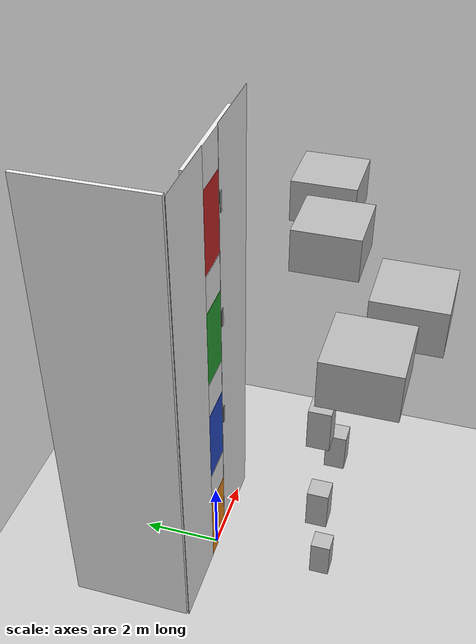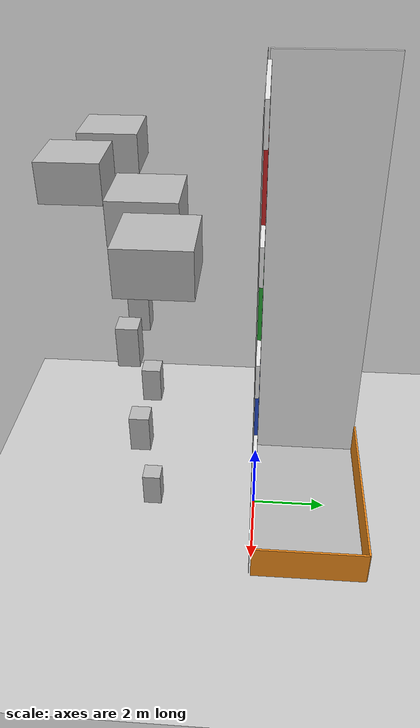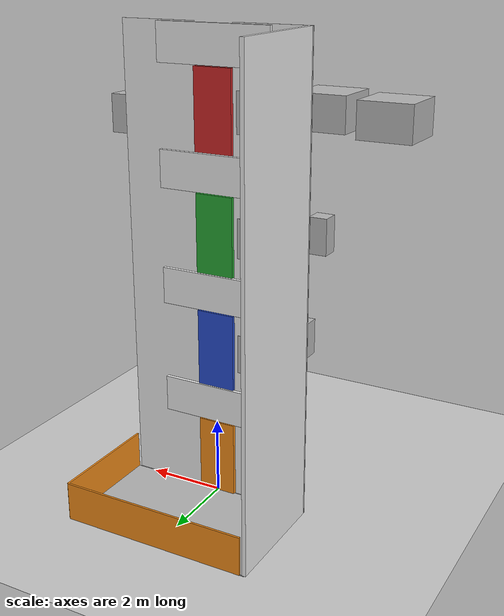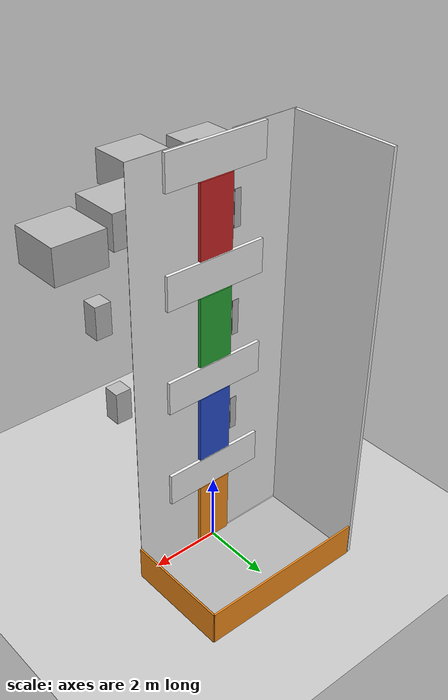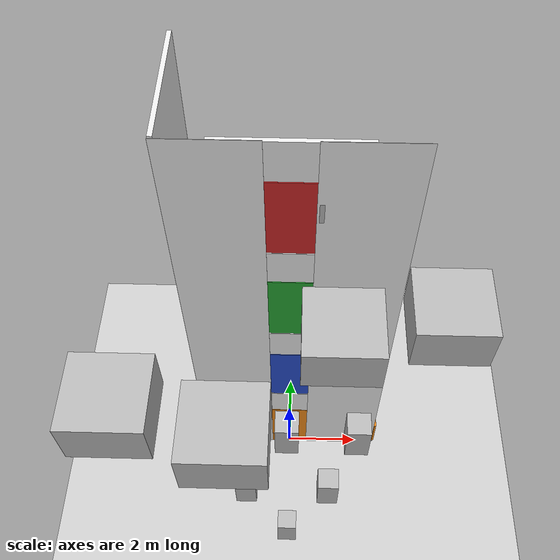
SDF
<sdf version="1.6">
 <world name="default">
  <include><uri>model://ground_plane</uri></include>
  <include><uri>model://sun</uri></include>
  <include>
   <uri>file:///home/sithija/mobile_receptionist_ws/src/gazebo_plugins/model/objects</uri>
   <pose>0 -2.90 0 0 0 0</pose>
  </include>
  <model name="sliding_boxes">
   <link name="level01_support">
    <pose>0 0 2.5 0 0 0</pose>
    <visual name="support01_visual">
     <geometry><box><size>3 0.1 0.95</size></box></geometry>
     <material>
      <script><uri>file://media/materials/scripts/gazebo.material</uri><name>Gazebo/White</name></script>
     </material>
    </visual>
    <collision name="support01_collision"><geometry><box><size>3 0.1 0.95</size></box></geometry></collision>
   </link>
   <link name="level02_support">
    <pose>0 0 5.5 0 0 0</pose>
    <visual name="support02_visual">
     <geometry><box><size>3 0.1 0.95</size></box></geometry>
     <material>
      <script><uri>file://media/materials/scripts/gazebo.material</uri><name>Gazebo/White</name></script>
     </material>
    </visual>
    <collision name="support02_collision"><geometry><box><size>3 0.1 0.95</size></box></geometry></collision>
   </link>
   <link name="level03_support">
    <pose>0 0 8.5 0 0 0</pose>
    <visual name="support03_visual">
     <geometry><box><size>3 0.1 0.95</size></box></geometry>
     <material>
      <script><uri>file://media/materials/scripts/gazebo.material</uri><name>Gazebo/White</name></script>
     </material>
    </visual>
    <collision name="support03_collision"><geometry><box><size>3 0.1 0.95</size></box></geometry></collision>
   </link>
   <link name="level04_support">
    <pose>0 0 11.5 0 0 0</pose>
    <visual name="support04_visual">
     <geometry><box><size>3 0.1 0.95</size></box></geometry>
     <material>
      <script><uri>file://media/materials/scripts/gazebo.material</uri><name>Gazebo/White</name></script>
     </material>
    </visual>
    <collision name="support04_collision"><geometry><box><size>3 0.1 0.95</size></box></geometry></collision>
   </link>
   <link name="front_wall_right">
    <pose>1.5 -0.05 6 0 0 0</pose>
    <visual name="front_wall_right_visual">
     <geometry><box><size>2 0.01 12</size></box></geometry>
     <material>
      <script><uri>file://media/materials/scripts/gazebo.material</uri><name>Gazebo/White</name></script>
     </material>
    </visual>
    <collision name="front_wall_right_collision">
     <geometry><box><size>2 0.01 12</size></box></geometry>
    </collision>
   </link>
   <link name="front_wall_left">
    <pose>-1.5 -0.05 6 0 0 0</pose>
    <visual name="front_wall_left_visual">
     <geometry><box><size>2 0.01 12</size></box></geometry>
     <material>
      <script><uri>file://media/materials/scripts/gazebo.material</uri><name>Gazebo/White</name></script>
     </material>
    </visual>
    <collision name="front_wall_left_collision"><geometry><box><size>2 0.01 12</size></box></geometry></collision>
   </link>
   <link name="elevator_support_left">
    <gravity>false</gravity>
    <pose>-2.45 1.5 6 0 0 0</pose>
    <visual name="elevator_support_left_visual">
     <geometry><box><size>0.1 3 12</size></box></geometry>
     <material>
      <script><uri>file://media/materials/scripts/gazebo.material</uri><name>Gazebo/White</name></script>
     </material>
    </visual>
    <collision name="elevator_support_left_collision">
     <geometry><box><size>0.1 3 12</size></box></geometry>
    </collision>
   </link>
   <link name="base"/>
   <link name="elevator">
    <gravity>false</gravity>
    <visual name="elevator_visual"><geometry><box><size>5 3 0.03</size></box></geometry></visual>
    <collision name="elevator_collision">
     <geometry><box><size>4.90 2.95 0.029</size></box></geometry>
     <surface><friction><ode><mu>1000.0</mu><mu2>1000.0</mu2></ode></friction></surface>
    </collision>
    <pose>0.05 1.5 0 0 0 0</pose>
   </link>
   <link name="elevator_handle_right">
    <gravity>false</gravity>
    <visual name="elevator_handle_right_visual">
     <geometry><box><size>0.05 3 1.0</size></box></geometry>
     <material>
      <script><uri>file://media/materials/scripts/gazebo.material</uri><name>Gazebo/Orange</name></script>
     </material>
    </visual>
    <collision name="elevator_handle_right_collision">
     <geometry><box><size>0.05 3 1.0</size></box></geometry>
    </collision>
    <pose>2.55 1.5 0.5 0 0 0</pose>
   </link>
   <link name="elevator_handle_rear">
    <gravity>false</gravity>
    <visual name="elevator_handle_rear_visual">
     <geometry><box><size>4.9 0.05 1.0</size></box></geometry>
     <material>
      <script><uri>file://media/materials/scripts/gazebo.material</uri><name>Gazebo/Orange</name></script>
     </material>
    </visual>
    <collision name="elevator_handle_rear_collision">
     <geometry><box><size>0.05 3 1.0</size></box></geometry>
    </collision>
    <pose>0.1 3.0 0.5 0 0 0</pose>
   </link>
   <link name="box1">
    <visual name="box1_visual">
     <geometry><box><size>1 0.1 2</size></box></geometry>
     <material>
      <script><uri>file://media/materials/scripts/gazebo.material</uri><name>Gazebo/Orange</name></script>
     </material>
    </visual>
    <collision name="box1_collision"><geometry><box><size>1 0.1 2</size></box></geometry></collision>
    <pose>0 0 1 0 0 0</pose>
   </link>
   <link name="box2">
    <visual name="box2_visual">
     <geometry><box><size>1 0.1 2</size></box></geometry>
     <material>
      <script><uri>file://media/materials/scripts/gazebo.material</uri><name>Gazebo/Blue</name></script>
     </material>
    </visual>
    <collision name="box2_collision"><geometry><box><size>1 0.1 2</size></box></geometry></collision>
    <pose>0 0 4 0 0 0</pose>
   </link>
   <link name="box3">
    <visual name="box3_visual">
     <geometry><box><size>1 0.1 2</size></box></geometry>
     <material>
      <script><uri>file://media/materials/scripts/gazebo.material</uri><name>Gazebo/Green</name></script>
     </material>
    </visual>
    <collision name="box3_collision"><geometry><box><size>1 0.1 2</size></box></geometry></collision>
    <pose>0 0 7 0 0 0</pose>
   </link>
   <link name="box4">
    <visual name="box4_visual">
     <geometry><box><size>1 0.1 2</size></box></geometry>
     <material>
      <script><uri>file://media/materials/scripts/gazebo.material</uri><name>Gazebo/Red</name></script>
     </material>
    </visual>
    <collision name="box4_collision"><geometry><box><size>1 0.1 2</size></box></geometry></collision>
    <pose>0 0 10 0 0 0</pose>
   </link>
   <link name="floor01_pannel_out">
    <visual name="floor01_pannel_out_visual">
     <geometry><box><size>0.1 0.01 0.5</size></box></geometry>
     <material>
      <script><uri>file://media/materials/scripts/pannel01.material</uri><name>Pannel01</name></script>
     </material>
    </visual>
    <pose>0.60 -0.06 4.2 0 0 0</pose>
   </link>
   <joint name="floor01_pannel_out_joint" type="fixed">
    <parent>base</parent>
    <child>floor01_pannel_out</child>
   </joint>
   <link name="floor02_pannel_out">
    <visual name="floor02_pannel_out_visual">
     <geometry><box><size>0.1 0.01 0.5</size></box></geometry>
     <material>
      <script><uri>file://media/materials/scripts/pannel02.material</uri><name>Pannel02</name></script>
     </material>
    </visual>
    <pose>0.60 -0.06 7.2 0 0 0</pose>
   </link>
   <joint name="floor02_pannel_out_joint" type="fixed">
    <parent>base</parent>
    <child>floor02_pannel_out</child>
   </joint>
   <link name="floor03_pannel_out">
    <visual name="floor03_pannel_out_visual">
     <geometry><box><size>0.1 0.01 0.5</size></box></geometry>
     <material>
      <script><uri>file://media/materials/scripts/pannel03.material</uri><name>Pannel03</name></script>
     </material>
    </visual>
    <pose>0.60 -0.06 10.2 0 0 0</pose>
   </link>
   <joint name="floor03_pannel_out_joint" type="fixed">
    <parent>base</parent>
    <child>floor03_pannel_out</child>
   </joint>
   <link name="floor01_pannel_in">
    <visual name="floor01_pannel_in_visual">
     <geometry><box><size>0.2 0.01 1.0</size></box></geometry>
     <material>
      <script><uri>file://media/materials/scripts/pannelIn01.material</uri><name>PannelIn01</name></script>
     </material>
    </visual>
    <pose>-0.70 -0.03 4 0 0 0</pose>
   </link>
   <joint name="floor01_pannel_in_joint" type="fixed">
    <parent>base</parent>
    <child>floor01_pannel_in</child>
   </joint>
   <link name="floor02_pannel_in">
    <visual name="floor02_pannel_in_visual">
     <geometry><box><size>0.2 0.01 1.0</size></box></geometry>
     <material>
      <script><uri>file://media/materials/scripts/pannelIn02.material</uri><name>PannelIn02</name></script>
     </material>
    </visual>
    <pose>-0.70 -0.03 7 0 0 0</pose>
   </link>
   <joint name="floor02_pannel_in_joint" type="fixed">
    <parent>base</parent>
    <child>floor02_pannel_in</child>
   </joint>
   <link name="light_link">
    <light name="point_light_floor01_in" type="point">
     <pose>-0.60 1.0 4 0 0 0</pose>
     <diffuse>1 1 1 1</diffuse>
     <specular>0.1 0.1 0.1 1</specular>
     <attenuation>
      <range>10</range>
      <linear>0.2</linear>
      <constant>0.1</constant>
      <quadratic>0.05</quadratic>
     </attenuation>
    </light>
    <light name="point_light_floor01_out" type="point">
     <pose>0.60 -1.0 4 0 0 0</pose>
     <diffuse>1 1 1 1</diffuse>
     <specular>0.1 0.1 0.1 1</specular>
     <attenuation>
      <range>10</range>
      <linear>0.2</linear>
      <constant>0.1</constant>
      <quadratic>0.05</quadratic>
     </attenuation>
    </light>
    <light name="point_light_floor02_in" type="point">
     <pose>-0.60 1.0 7 0 0 0</pose>
     <diffuse>1 1 1 1</diffuse>
     <specular>0.1 0.1 0.1 1</specular>
     <attenuation>
      <range>10</range>
      <linear>0.2</linear>
      <constant>0.1</constant>
      <quadratic>0.05</quadratic>
     </attenuation>
    </light>
    <light name="point_light_floor02_out" type="point">
     <pose>0.60 -1.0 7 0 0 0</pose>
     <diffuse>1 1 1 1</diffuse>
     <specular>0.1 0.1 0.1 1</specular>
     <attenuation>
      <range>10</range>
      <linear>0.2</linear>
      <constant>0.1</constant>
      <quadratic>0.05</quadratic>
     </attenuation>
    </light>
    <light name="point_light_floor03_in" type="point">
     <pose>-0.60 1.0 10 0 0 0</pose>
     <diffuse>1 1 1 1</diffuse>
     <specular>0.1 0.1 0.1 1</specular>
     <attenuation>
      <range>10</range>
      <linear>0.2</linear>
      <constant>0.1</constant>
      <quadratic>0.05</quadratic>
     </attenuation>
    </light>
   </link>
   <joint name="light_joint" type="fixed"><parent>base</parent><child>light_link</child></joint>
   <link name="floor03_pannel_in">
    <visual name="floor03_pannel_in_visual">
     <geometry><box><size>0.2 0.01 1.0</size></box></geometry>
     <material>
      <script><uri>file://media/materials/scripts/pannelIn03.material</uri><name>PannelIn03</name></script>
     </material>
    </visual>
    <pose>-0.70 -0.03 10 0 0 0</pose>
   </link>
   <joint name="floor03_pannel_in_joint" type="fixed">
    <parent>base</parent>
    <child>floor03_pannel_in</child>
   </joint>
   <joint name="connector" type="fixed"><parent>base</parent><child>Floor_6</child></joint>
   <joint name="joint_front_wall_left" type="fixed">
    <parent>level03_support</parent>
    <child>front_wall_left</child>
   </joint>
   <joint name="joint_front_wall_right" type="fixed">
    <parent>level03_support</parent>
    <child>front_wall_right</child>
   </joint>
   <joint name="joint_elevator_support_left" type="fixed">
    <parent>base</parent>
    <child>elevator_support_left</child>
   </joint>
   <joint name="joint_elevator_handle_right" type="fixed">
    <parent>elevator</parent>
    <child>elevator_handle_right</child>
   </joint>
   <joint name="joint_elevator_handle_rear" type="fixed">
    <parent>elevator</parent>
    <child>elevator_handle_rear</child>
   </joint>
   <joint name="elevator_joint" type="prismatic">
    <parent>elevator_support_left</parent>
    <child>elevator</child>
    <axis>
     <xyz>0 0 1</xyz>
     <limit><lower>0</lower><upper>13</upper><effort>30000000000</effort><velocity>100.0</velocity></limit>
    </axis>
   </joint>
   <joint name="joint1" type="prismatic">
    <parent>base</parent>
    <child>box1</child>
    <pose>0 0 1 0 0 0</pose>
    <axis>
     <xyz>1 0 0</xyz>
     <limit><lower>-0.5</lower><upper>1.5</upper><effort>30</effort><velocity>0.5</velocity></limit>
    </axis>
   </joint>
   <joint name="joint2" type="prismatic">
    <parent>level01_support</parent>
    <child>box2</child>
    <axis>
     <xyz>1 0 0</xyz>
     <limit><lower>-0.5</lower><upper>1.5</upper><effort>30</effort><velocity>0.5</velocity></limit>
    </axis>
   </joint>
   <joint name="joint3" type="prismatic">
    <parent>level02_support</parent>
    <child>box3</child>
    <pose>-0.5 0 0 0 0 0</pose>
    <axis>
     <xyz>1 0 0</xyz>
     <limit><lower>-0.5</lower><upper>1.5</upper><effort>30</effort><velocity>0.5</velocity></limit>
    </axis>
   </joint>
   <joint name="joint4" type="prismatic">
    <parent>level03_support</parent>
    <child>box4</child>
    <axis>
     <xyz>1 0 0</xyz>
     <limit><lower>-0.5</lower><upper>1.5</upper><effort>30</effort><velocity>0.5</velocity></limit>
    </axis>
   </joint>
   <joint name="joint_level01_support" type="fixed">
    <parent>base</parent>
    <child>level01_support</child>
    <pose>0 0 4.1 0 0 0</pose>
   </joint>
   <joint name="joint_level02_support" type="fixed">
    <parent>base</parent>
    <child>level02_support</child>
    <pose>0 0 7.1 0 0 0</pose>
   </joint>
   <joint name="joint_level03_support" type="fixed">
    <parent>base</parent>
    <child>level03_support</child>
    <pose>0 0 10.1 0 0 0</pose>
   </joint>
   <joint name="joint_level04_support" type="fixed">
    <parent>base</parent>
    <child>level04_support</child>
    <pose>0 0 13.1 0 0 0</pose>
   </joint>
   <plugin name="multi_floor_door_control" filename="libmulti_floor_door_control.so"/>
  </model>
 </world>
</sdf>

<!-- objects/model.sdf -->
<sdf version='1.7'>
  <model name='objects'>
    <!-- Link: cube001 -->
    <link name="cube001">
      <visual name="cube001_visual">
        <pose>0.0 0.0 0.5 0.0 0.0 0.0</pose>
        <geometry>
          <box>
            <size>0.5 0.5 1.0</size>
          </box>
        </geometry>
      </visual>
      <collision name="cube001_collision">
        <pose>0.0 0.0 0.5 0.0 0.0 0.0</pose>
        <geometry>
          <box>
            <size>0.5 0.5 1.0</size>
          </box>
        </geometry>
      </collision>
    </link>
    <joint name="joint_cube001" type="fixed">
      <parent>world</parent>
      <child>cube001</child>
    </joint>

    <!-- Link: cube002 -->
    <link name="cube002">
      <visual name="cube002_visual">
        <pose>-1.0 0.0 3.5 0.0 0.0 0.0</pose>
        <geometry>
          <box>
            <size>0.5 0.5 1.0</size>
          </box>
        </geometry>
      </visual>
      <collision name="cube002_collision">
        <pose>-1.0 0.0 3.5 0.0 0.0 0.0</pose>
        <geometry>
          <box>
            <size>0.5 0.5 1.0</size>
          </box>
        </geometry>
      </collision>
    </link>
    <joint name="joint_cube002" type="fixed">
      <parent>world</parent>
      <child>cube002</child>
    </joint>

    <!-- Link: cube003 -->
    <link name="cube003">
      <visual name="cube003_visual">
        <pose>1.0 0.0 3.5 0.0 0.0 0.0</pose>
        <geometry>
          <box>
            <size>0.5 0.5 1.0</size>
          </box>
        </geometry>
      </visual>
      <collision name="cube003_collision">
        <pose>1.0 0.0 3.5 0.0 0.0 0.0</pose>
        <geometry>
          <box>
            <size>0.5 0.5 1.0</size>
          </box>
        </geometry>
      </collision>
    </link>
    <joint name="joint_cube003" type="fixed">
      <parent>world</parent>
      <child>cube003</child>
    </joint>

    <!-- Link: cube004 -->
    <link name="cube004">
      <visual name="cube004_visual">
        <pose>0.0 0.0 6.5 0.0 0.0 0.0</pose>
        <geometry>
          <box>
            <size>0.5 0.5 1.0</size>
          </box>
        </geometry>
      </visual>
      <collision name="cube004_collision">
        <pose>0.0 0.0 6.5 0.0 0.0 0.0</pose>
        <geometry>
          <box>
            <size>0.5 0.5 1.0</size>
          </box>
        </geometry>
      </collision>
    </link>
    <joint name="joint_cube004" type="fixed">
      <parent>world</parent>
      <child>cube004</child>
    </joint>

    <!-- Link: cube005 -->
    <link name="cube005">
      <visual name="cube005_visual">
        <pose>-1.5 0.0 6.5 0.0 0.0 0.0</pose>
        <geometry>
          <box>
            <size>0.5 0.5 1.0</size>
          </box>
        </geometry>
      </visual>
      <collision name="cube005_collision">
        <pose>-1.5 0.0 6.5 0.0 0.0 0.0</pose>
        <geometry>
          <box>
            <size>0.5 0.5 1.0</size>
          </box>
        </geometry>
      </collision>
    </link>
    <joint name="joint_cube005" type="fixed">
      <parent>world</parent>
      <child>cube005</child>
    </joint>

    <!-- Link: cube006 -->
    <link name="cube006">
      <visual name="cube006_visual">
        <pose>1.5 0.0 6.5 0.0 0.0 0.0</pose>
        <geometry>
          <box>
            <size>0.5 0.5 1.0</size>
          </box>
        </geometry>
      </visual>
      <collision name="cube006_collision">
        <pose>1.5 0.0 6.5 0.0 0.0 0.0</pose>
        <geometry>
          <box>
            <size>0.5 0.5 1.0</size>
          </box>
        </geometry>
      </collision>
    </link>
    <joint name="joint_cube006" type="fixed">
      <parent>world</parent>
      <child>cube006</child>
    </joint>

    <!-- Link: cube007 -->
    <link name="cube007">
      <visual name="cube007_visual">
        <pose>-1.0 -1.5 9.5 0.0 0.0 0.0</pose>
        <geometry>
          <box>
            <size>1.5 1.5 1.0</size>
          </box>
        </geometry>
      </visual>
      <collision name="cube007_collision">
        <pose>-1.0 -1.5 9.5 0.0 0.0 0.0</pose>
        <geometry>
          <box>
            <size>1.5 1.5 1.0</size>
          </box>
        </geometry>
      </collision>
    </link>
    <joint name="joint_cube007" type="fixed">
      <parent>world</parent>
      <child>cube007</child>
    </joint>

    <!-- Link: cube008 -->
    <link name="cube008">
      <visual name="cube008_visual">
        <pose>1.0 0.5 9.5 0.0 0.0 0.0</pose>
        <geometry>
          <box>
            <size>1.5 1.5 1.0</size>
          </box>
        </geometry>
      </visual>
      <collision name="cube008_collision">
        <pose>1.0 0.5 9.5 0.0 0.0 0.0</pose>
        <geometry>
          <box>
            <size>1.5 1.5 1.0</size>
          </box>
        </geometry>
      </collision>
    </link>
    <joint name="joint_cube008" type="fixed">
      <parent>world</parent>
      <child>cube008</child>
    </joint>

    <!-- Link: cube009 -->
    <link name="cube009">
      <visual name="cube009_visual">
        <pose>-3.0 -1.0 9.5 0.0 0.0 0.0</pose>
        <geometry>
          <box>
            <size>1.5 1.5 1.0</size>
          </box>
        </geometry>
      </visual>
      <collision name="cube009_collision">
        <pose>-3.0 -1.0 9.5 0.0 0.0 0.0</pose>
        <geometry>
          <box>
            <size>1.5 1.5 1.0</size>
          </box>
        </geometry>
      </collision>
    </link>
    <joint name="joint_cube009" type="fixed">
      <parent>world</parent>
      <child>cube009</child>
    </joint>

    <!-- Link: cube010 -->
    <link name="cube010">
      <visual name="cube010_visual">
        <pose>3.0 1.0 9.5 0.0 0.0 0.0</pose>
        <geometry>
          <box>
            <size>1.5 1.5 1.0</size>
          </box>
        </geometry>
      </visual>
      <collision name="cube010_collision">
        <pose>3.0 1.0 9.5 0.0 0.0 0.0</pose>
        <geometry>
          <box>
            <size>1.5 1.5 1.0</size>
          </box>
        </geometry>
      </collision>
    </link>
    <joint name="joint_cube010" type="fixed">
      <parent>world</parent>
      <child>cube010</child>
    </joint>

  </model>
</sdf>
